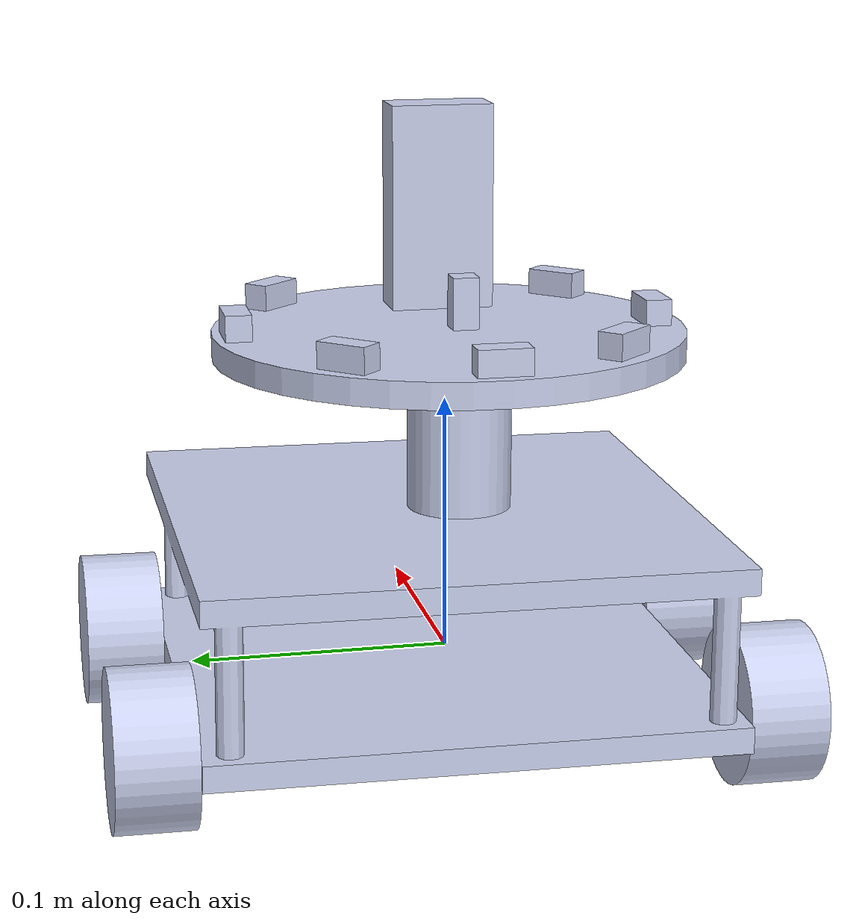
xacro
<?xml version='1.0'?>

<robot name="rob" xmlns:xacro="http://www.ros.org/wiki/xacro">
  <xacro:include filename="$(find robot_mod)/urdf/mybot1.gazebo"/>
  <link
    name="base_link">
    <inertial>
      <origin
        xyz="-0.00734399310229916 0.0298945739181546 -0.00692860117085678"
        rpy="0 0 0" />
      <mass
        value="0.890847302493005" />
      <inertia
        ixx="0.00355415837473713"
        ixy="-1.13557763177531E-06"
        ixz="3.6127426763209E-09"
        iyy="0.00560075948884006"
        iyz="1.48922271272916E-05"
        izz="0.0035514656039363" />
    </inertial>
    <visual>
      <origin
        xyz="0 0 0"
        rpy="0 0 0" />
      <geometry>
        <mesh
          filename="package://robot_mod/meshes/base_link.STL" />
      </geometry>
      <material
        name="">
        <color
          rgba="0.792156862745098 0.819607843137255 0.933333333333333 1" />
      </material>
    </visual>
    <collision>
      <origin
        xyz="0 0 0"
        rpy="0 0 0" />
      <geometry>
        <mesh
          filename="package://robot_mod/meshes/base_link.STL" />
      </geometry>
    </collision>
  </link>
  <link
    name="wheel1_link">
    <inertial>
      <origin
        xyz="-6.93889390390723E-18 -0.015 0"
        rpy="0 0 0" />
      <mass
        value="0.0848230016469244" />
      <inertia
        ixx="2.54469004940773E-05"
        ixy="2.24993126614424E-21"
        ixz="-3.18981523715761E-23"
        iyy="3.8170350741116E-05"
        iyz="1.7205356741103E-21"
        izz="2.54469004940773E-05" />
    </inertial>
    <visual>
      <origin
        xyz="0 0 0"
        rpy="0 0 0" />
      <geometry>
        <mesh
          filename="package://robot_mod/meshes/wheel1_link.STL" />
      </geometry>
      <material
        name="">
        <color
          rgba="0.792156862745098 0.819607843137255 0.933333333333333 1" />
      </material>
    </visual>
    <collision>
      <origin
        xyz="0 0 0"
        rpy="0 0 0" />
      <geometry>
        <mesh
          filename="package://robot_mod/meshes/wheel1_link.STL" />
      </geometry>
    </collision>
  </link>
  <joint
    name="wheel1_joint"
    type="continuous">
    <origin
      xyz="0.058501 0.10796 -0.0044153"
      rpy="-3.1343 -0.008732 -0.0032875" />
    <parent
      link="base_link" />
    <child
      link="wheel1_link" />
    <axis
      xyz="0 -1 0" />
      <limit effort="100" velocity="100"/>
    <joint_properties damping="0.0" friction="0.0"/>
  </joint>
  <link
    name="wheel2_link">
    <inertial>
      <origin
        xyz="0 -0.015 0"
        rpy="0 0 0" />
      <mass
        value="0.0848230016469244" />
      <inertia
        ixx="2.54469004940773E-05"
        ixy="-6.31965987990513E-21"
        ixz="5.75924501490046E-23"
        iyy="3.8170350741116E-05"
        iyz="1.99846835992811E-21"
        izz="2.54469004940773E-05" />
    </inertial>
    <visual>
      <origin
        xyz="0 0 0"
        rpy="0 0 0" />
      <geometry>
        <mesh
          filename="package://robot_mod/meshes/wheel2_link.STL" />
      </geometry>
      <material
        name="">
        <color
          rgba="0.792156862745098 0.819607843137255 0.933333333333333 1" />
      </material>
    </visual>
    <collision>
      <origin
        xyz="0 0 0"
        rpy="0 0 0" />
      <geometry>
        <mesh
          filename="package://robot_mod/meshes/wheel2_link.STL" />
      </geometry>
    </collision>
  </link>
  <joint
    name="wheel2_joint"
    type="continuous">
    <origin
      xyz="-0.074871 0.10839 -0.0046147"
      rpy="-3.1343 0.063737 -0.0027601" />
    <parent
      link="base_link" />
    <child
      link="wheel2_link" />
    <axis
      xyz="0 -1 0" />
      <limit effort="100" velocity="100"/>
    <joint_properties damping="0.0" friction="0.0"/>
  </joint>
  <link
    name="wheel3_link">
    <inertial>
      <origin
        xyz="-6.93889390390723E-18 0.015 1.30104260698261E-18"
        rpy="0 0 0" />
      <mass
        value="0.0848230016469244" />
      <inertia
        ixx="2.54469004940773E-05"
        ixy="-6.22039820639877E-22"
        ixz="-2.22304789623626E-23"
        iyy="3.8170350741116E-05"
        iyz="-6.35274710440725E-22"
        izz="2.54469004940773E-05" />
    </inertial>
    <visual>
      <origin
        xyz="0 0 0"
        rpy="0 0 0" />
      <geometry>
        <mesh
          filename="package://robot_mod/meshes/wheel3_link.STL" />
      </geometry>
      <material
        name="">
        <color
          rgba="0.792156862745098 0.819607843137255 0.933333333333333 1" />
      </material>
    </visual>
    <collision>
      <origin
        xyz="0 0 0"
        rpy="0 0 0" />
      <geometry>
        <mesh
          filename="package://robot_mod/meshes/wheel3_link.STL" />
      </geometry>
    </collision>
  </link>
  <joint
    name="wheel3_joint"
    type="continuous">
    <origin
      xyz="0.058449 -0.092049 -0.004307"
      rpy="-3.1343 0.010365 -0.0031487" />
    <parent
      link="base_link" />
    <child
      link="wheel3_link" />
    <axis
      xyz="0 -1 0" />
      <limit effort="100" velocity="100"/>
    <joint_properties damping="0.0" friction="0.0"/>
  </joint>
  <link
    name="wheel4_link">
    <inertial>
      <origin
        xyz="-2.77555756156289E-17 0.015 8.67361737988404E-19"
        rpy="0 0 0" />
      <mass
        value="0.0848230016469244" />
      <inertia
        ixx="2.54469004940773E-05"
        ixy="-6.50494833711701E-21"
        ixz="-3.47467556060556E-22"
        iyy="3.8170350741116E-05"
        iyz="-9.26442286059391E-22"
        izz="2.54469004940773E-05" />
    </inertial>
    <visual>
      <origin
        xyz="0 0 0"
        rpy="0 0 0" />
      <geometry>
        <mesh
          filename="package://robot_mod/meshes/wheel4_link.STL" />
      </geometry>
      <material
        name="">
        <color
          rgba="0.792156862745098 0.819607843137255 0.933333333333333 1" />
      </material>
    </visual>
    <collision>
      <origin
        xyz="0 0 0"
        rpy="0 0 0" />
      <geometry>
        <mesh
          filename="package://robot_mod/meshes/wheel4_link.STL" />
      </geometry>
    </collision>
  </link>
  <joint
    name="wheel4_joint"
    type="continuous">
    <origin
      xyz="-0.07512 -0.091616 -0.0045836"
      rpy="-3.1343 0.040789 -0.0029274" />
    <parent
      link="base_link" />
    <child
      link="wheel4_link" />
    <axis
      xyz="0 -1 0" />
      <limit effort="100" velocity="100"/>
    <joint_properties damping="0.0" friction="0.0"/>
  </joint>
  <link
    name="tarelka_Link">
    <inertial>
      <origin
        xyz="0.00914641388761052 0.0140432662372767 0.00105749638411194"
        rpy="0 0 0" />
      <mass
        value="0.318469004940774" />
      <inertia
        ixx="0.000560086866524596"
        ixy="-2.04089134038771E-21"
        ixz="-2.65554710073497E-08"
        iyy="0.0010412661366768"
        iyz="-8.99527243297693E-21"
        izz="0.000553687086901216" />
    </inertial>
    <visual>
      <origin
        xyz="0 0 0"
        rpy="0 0 0" />
      <geometry>
        <mesh
          filename="package://robot_mod/meshes/tarelka_Link.STL" />
      </geometry>
      <material
        name="">
        <color
          rgba="0.792156862745098 0.819607843137255 0.933333333333333 1" />
      </material>
    </visual>
    <collision>
      <origin
        xyz="0 0 0"
        rpy="0 0 0" />
      <geometry>
        <mesh
          filename="package://robot_mod/meshes/tarelka_Link.STL" />
      </geometry>
    </collision>
  </link>
  <joint
    name="tarelka_joint"
    type="fixed">
    <origin
      xyz="-0.00768294366524355 0.000139438304547836 0.119354771870662"
      rpy="1.5707963267949 0 0" />
    <parent
      link="base_link" />
    <child
      link="tarelka_Link" />
    <axis
      xyz="0 0 0" />
      <joint_properties damping="0.0" friction="0.0"/>
  </joint>
  <link
    name="ultra1_link">
    <inertial>
      <origin
        xyz="-1.38777878078145E-17 0.00499999999999998 1.30104260698261E-18"
        rpy="0 0 0" />
      <mass
        value="0.002" />
      <inertia
        ixx="8.33333333333335E-08"
        ixy="-1.4617545288883E-39"
        ixz="-5.99671092224471E-24"
        iyy="8.33333333333335E-08"
        iyz="1.21450428426589E-40"
        izz="3.33333333333335E-08" />
    </inertial>
    <visual>
      <origin
        xyz="0 0 0"
        rpy="0 0 0" />
      <geometry>
        <mesh
          filename="package://robot_mod/meshes/ultra1_link.STL" />
      </geometry>
      <material
        name="">
        <color
          rgba="0.792156862745098 0.819607843137255 0.933333333333333 1" />
      </material>
    </visual>
    <collision>
      <origin
        xyz="0 0 0"
        rpy="0 0 0" />
      <geometry>
        <mesh
          filename="package://robot_mod/meshes/ultra1_link.STL" />
      </geometry>
    </collision>
  </link>
  <joint
    name="ultra1_joint"
    type="fixed">
    <origin
      xyz="0.0793289692620174 0.00999999999999995 0.00292088535692958"
      rpy="0 0 0" />
    <parent
      link="tarelka_Link" />
    <child
      link="ultra1_link" />
    <axis
      xyz="0 0 0" />
  </joint>
  <link
    name="ultra8_link">
    <inertial>
      <origin
        xyz="0 0.005 0"
        rpy="0 0 0" />
      <mass
        value="0.002" />
      <inertia
        ixx="8.33333333333335E-08"
        ixy="-1.34742306322573E-24"
        ixz="1.65436122510606E-24"
        iyy="8.33333333333335E-08"
        iyz="-1.54607614556705E-24"
        izz="3.33333333333334E-08" />
    </inertial>
    <visual>
      <origin
        xyz="0 0 0"
        rpy="0 0 0" />
      <geometry>
        <mesh
          filename="package://robot_mod/meshes/ultra8_link.STL" />
      </geometry>
      <material
        name="">
        <color
          rgba="0.792156862745098 0.819607843137255 0.933333333333333 1" />
      </material>
    </visual>
    <collision>
      <origin
        xyz="0 0 0"
        rpy="0 0 0" />
      <geometry>
        <mesh
          filename="package://robot_mod/meshes/ultra8_link.STL" />
      </geometry>
    </collision>
  </link>
  <joint
    name="ultra8_joint"
    type="fixed">
    <origin
      xyz="0.0557273075572934 0.01 0.0567008918755133"
      rpy="0 -0.794124809657419 0" />
    <parent
      link="tarelka_Link" />
    <child
      link="ultra8_link" />
    <axis
      xyz="0 0 0" />
  </joint>
  <link
    name="ultra7_link">
    <inertial>
      <origin
        xyz="0 0.005 0"
        rpy="0 0 0" />
      <mass
        value="0.002" />
      <inertia
        ixx="8.33333333333335E-08"
        ixy="8.48586203925743E-25"
        ixz="-4.74413930693304E-22"
        iyy="8.33333333333335E-08"
        iyz="-1.53165970987907E-23"
        izz="3.33333333333334E-08" />
    </inertial>
    <visual>
      <origin
        xyz="0 0 0"
        rpy="0 0 0" />
      <geometry>
        <mesh
          filename="package://robot_mod/meshes/ultra7_link.STL" />
      </geometry>
      <material
        name="">
        <color
          rgba="0.792156862745098 0.819607843137255 0.933333333333333 1" />
      </material>
    </visual>
    <collision>
      <origin
        xyz="0 0 0"
        rpy="0 0 0" />
      <geometry>
        <mesh
          filename="package://robot_mod/meshes/ultra7_link.STL" />
      </geometry>
    </collision>
  </link>
  <joint
    name="ultra7_joint"
    type="fixed">
    <origin
      xyz="-0.00325795589515732 0.01 0.0787365912414392"
      rpy="0 -1.56283334013928 0" />
    <parent
      link="tarelka_Link" />
    <child
      link="ultra7_link" />
    <axis
      xyz="0 0 0" />
  </joint>
  <link
    name="ultra6_link">
    <inertial>
      <origin
        xyz="-1.38777878078145E-17 0.005 0"
        rpy="0 0 0" />
      <mass
        value="0.002" />
      <inertia
        ixx="8.33333333333335E-08"
        ixy="-4.98962822639576E-25"
        ixz="-3.39144051146741E-23"
        iyy="8.33333333333335E-08"
        iyz="-4.71747040957049E-24"
        izz="3.33333333333334E-08" />
    </inertial>
    <visual>
      <origin
        xyz="0 0 0"
        rpy="0 0 0" />
      <geometry>
        <mesh
          filename="package://robot_mod/meshes/ultra6_link.STL" />
      </geometry>
      <material
        name="">
        <color
          rgba="0.792156862745098 0.819607843137255 0.933333333333333 1" />
      </material>
    </visual>
    <collision>
      <origin
        xyz="0 0 0"
        rpy="0 0 0" />
      <geometry>
        <mesh
          filename="package://robot_mod/meshes/ultra6_link.STL" />
      </geometry>
    </collision>
  </link>
  <joint
    name="ultra6_joint"
    type="fixed">
    <origin
      xyz="-0.0592281897648251 0.0100000000000002 0.0514965541721973"
      rpy="3.14159265358979 -0.77 3.14159265358979" />
    <parent
      link="tarelka_Link" />
    <child
      link="ultra6_link" />
    <axis
      xyz="0 0 0" />
  </joint>
  <link
    name="ultra5_link">
    <inertial>
      <origin
        xyz="0 0.005 2.16840434497101E-18"
        rpy="0 0 0" />
      <mass
        value="0.002" />
      <inertia
        ixx="8.33333333333334E-08"
        ixy="4.41162993361619E-24"
        ixz="-3.16699266231279E-22"
        iyy="8.33333333333334E-08"
        iyz="6.50521303491304E-24"
        izz="3.33333333333334E-08" />
    </inertial>
    <visual>
      <origin
        xyz="0 0 0"
        rpy="0 0 0" />
      <geometry>
        <mesh
          filename="package://robot_mod/meshes/ultra5_link.STL" />
      </geometry>
      <material
        name="">
        <color
          rgba="0.792156862745098 0.819607843137255 0.933333333333333 1" />
      </material>
    </visual>
    <collision>
      <origin
        xyz="0 0 0"
        rpy="0 0 0" />
      <geometry>
        <mesh
          filename="package://robot_mod/meshes/ultra5_link.STL" />
      </geometry>
    </collision>
  </link>
  <joint
    name="ultra5_joint"
    type="fixed">
    <origin
      xyz="-0.0797771249376778 0.01 0.00180960352729891"
      rpy="3.14159265358979 0 3.14159265358979" />
    <parent
      link="tarelka_Link" />
    <child
      link="ultra5_link" />
    <axis
      xyz="0 0 0" />
  </joint>
  <link
    name="ultra4_link">
    <inertial>
      <origin
        xyz="1.38777878078145E-17 0.005 0"
        rpy="0 0 0" />
      <mass
        value="0.002" />
      <inertia
        ixx="8.33333333333336E-08"
        ixy="2.67056933078134E-24"
        ixz="3.97046694025453E-23"
        iyy="8.33333333333336E-08"
        iyz="-3.6806172087867E-24"
        izz="3.33333333333334E-08" />
    </inertial>
    <visual>
      <origin
        xyz="0 0 0"
        rpy="0 0 0" />
      <geometry>
        <mesh
          filename="package://robot_mod/meshes/ultra4_link.STL" />
      </geometry>
      <material
        name="">
        <color
          rgba="0.792156862745098 0.819607843137255 0.933333333333333 1" />
      </material>
    </visual>
    <collision>
      <origin
        xyz="0 0 0"
        rpy="0 0 0" />
      <geometry>
        <mesh
          filename="package://robot_mod/meshes/ultra4_link.STL" />
      </geometry>
    </collision>
  </link>
  <joint
    name="ultra4_joint"
    type="fixed">
    <origin
      xyz="-0.0616920200275471 0.01 -0.0496041607648557"
      rpy="3.14159265358979 0.76 3.14159265358979" />
    <parent
      link="tarelka_Link" />
    <child
      link="ultra4_link" />
    <axis
      xyz="0 0 0" />
  </joint>
  <link
    name="ultra3_link">
    <inertial>
      <origin
        xyz="-1.38777878078145E-17 0.005 3.46944695195361E-18"
        rpy="0 0 0" />
      <mass
        value="0.002" />
      <inertia
        ixx="8.33333333333335E-08"
        ixy="2.22124716756532E-24"
        ixz="-2.64180808134123E-23"
        iyy="8.33333333333335E-08"
        iyz="-2.19081631978254E-24"
        izz="3.33333333333334E-08" />
    </inertial>
    <visual>
      <origin
        xyz="0 0 0"
        rpy="0 0 0" />
      <geometry>
        <mesh
          filename="package://robot_mod/meshes/ultra3_link.STL" />
      </geometry>
      <material
        name="">
        <color
          rgba="0.792156862745098 0.819607843137255 0.933333333333333 1" />
      </material>
    </visual>
    <collision>
      <origin
        xyz="0 0 0"
        rpy="0 0 0" />
      <geometry>
        <mesh
          filename="package://robot_mod/meshes/ultra3_link.STL" />
      </geometry>
    </collision>
  </link>
  <joint
    name="ultra3_joint"
    type="fixed">
    <origin
      xyz="0.00027198687362272 0.01 -0.0812381037591473"
      rpy="0 1.56206968053494 0" />
    <parent
      link="tarelka_Link" />
    <child
      link="ultra3_link" />
    <axis
      xyz="0 0 0" />
  </joint>
  <link
    name="ultra2_link">
    <inertial>
      <origin
        xyz="-1.38777878078145E-17 0.005 0"
        rpy="0 0 0" />
      <mass
        value="0.002" />
      <inertia
        ixx="8.33333333333334E-08"
        ixy="2.19930418994969E-24"
        ixz="1.32348898008484E-23"
        iyy="8.33333333333334E-08"
        iyz="2.71243884730729E-24"
        izz="3.33333333333334E-08" />
    </inertial>
    <visual>
      <origin
        xyz="0 0 0"
        rpy="0 0 0" />
      <geometry>
        <mesh
          filename="package://robot_mod/meshes/ultra2_link.STL" />
      </geometry>
      <material
        name="">
        <color
          rgba="0.792156862745098 0.819607843137255 0.933333333333333 1" />
      </material>
    </visual>
    <collision>
      <origin
        xyz="0 0 0"
        rpy="0 0 0" />
      <geometry>
        <mesh
          filename="package://robot_mod/meshes/ultra2_link.STL" />
      </geometry>
    </collision>
  </link>
  <joint
    name="ultra2_joint"
    type="fixed">
    <origin
      xyz="0.0549590536454422 0.01 -0.0600475135053598"
      rpy="0 0.776671517137479 0" />
    <parent
      link="tarelka_Link" />
    <child
      link="ultra2_link" />
    <axis
      xyz="0 0 0" />
  </joint>
  <link
    name="camera_link">
    <inertial>
      <origin
        xyz="-6.93889390390723E-18 0.00499999999999998 0"
        rpy="0 0 0" />
      <mass
        value="0.002" />
      <inertia
        ixx="8.33333333333335E-08"
        ixy="4.00377249636385E-26"
        ixz="5.76441489372891E-24"
        iyy="8.33333333333334E-08"
        iyz="1.88852733983969E-24"
        izz="3.33333333333334E-08" />
    </inertial>
    <visual>
      <origin
        xyz="0 0 0"
        rpy="0 0 0" />
      <geometry>
        <mesh
          filename="package://robot_mod/meshes/camera_link.STL" />
      </geometry>
      <material
        name="">
        <color
          rgba="0.792156862745098 0.819607843137255 0.933333333333333 1" />
      </material>
    </visual>
    <collision>
      <origin
        xyz="0 0 0"
        rpy="0 0 0" />
      <geometry>
        <mesh
          filename="package://robot_mod/meshes/camera_link.STL" />
      </geometry>
    </collision>
  </link>
  <joint
    name="camera_joint"
    type="fixed">
    <origin
      xyz="0.0605128264132998 0.0740282391432658 0.00512397322163727"
      rpy="-1.57 0.00414933997091996 0" />
    <parent
      link="tarelka_Link" />
    <child
      link="camera_link" />
    <axis
      xyz="0 0 0" />
  </joint>
  <link
    name="ultra_Link">
    <inertial>
      <origin
        xyz="1.73472347597681E-18 0.005 0"
        rpy="0 0 0" />
      <mass
        value="0.002" />
      <inertia
        ixx="8.33333333333335E-08"
        ixy="9.30578189122156E-25"
        ixz="1.27008645303574E-24"
        iyy="8.33333333333335E-08"
        iyz="4.86778005319435E-24"
        izz="3.33333333333334E-08" />
    </inertial>
    <visual>
      <origin
        xyz="0 0 0"
        rpy="0 0 0" />
      <geometry>
        <mesh
          filename="package://robot_mod/meshes/ultra_Link.STL" />
      </geometry>
      <material
        name="">
        <color
          rgba="0.792156862745098 0.819607843137255 0.933333333333333 1" />
      </material>
    </visual>
    <collision>
      <origin
        xyz="0 0 0"
        rpy="0 0 0" />
      <geometry>
        <mesh
          filename="package://robot_mod/meshes/ultra_Link.STL" />
      </geometry>
    </collision>
  </link>
  <joint
    name="ultra_joint"
    type="fixed">
    <origin
      xyz="-0.000972772813565568 0.02 0.0103617340165359"
      rpy="-1.5707963267949 0.00648425728454263 0" />
    <parent
      link="tarelka_Link" />
    <child
      link="ultra_Link" />
    <axis
      xyz="0 0 0" />
  </joint>
</robot>
